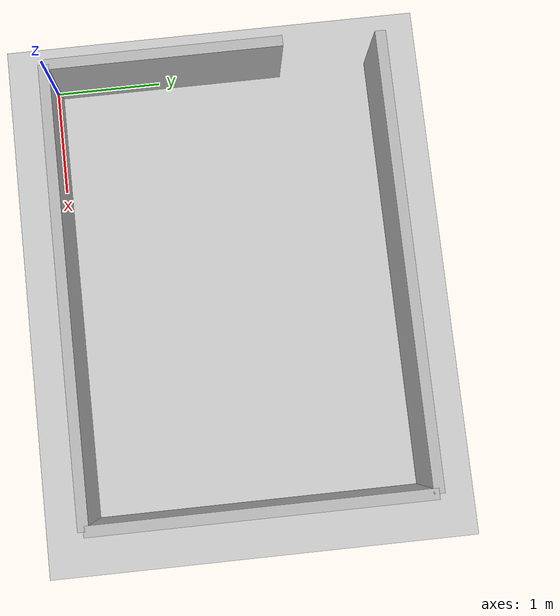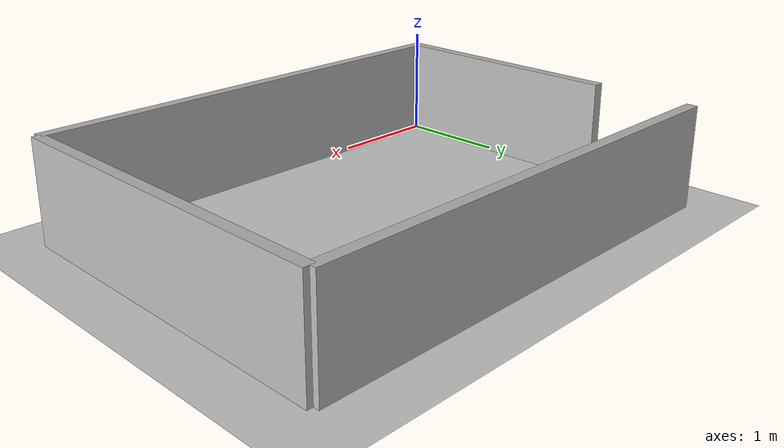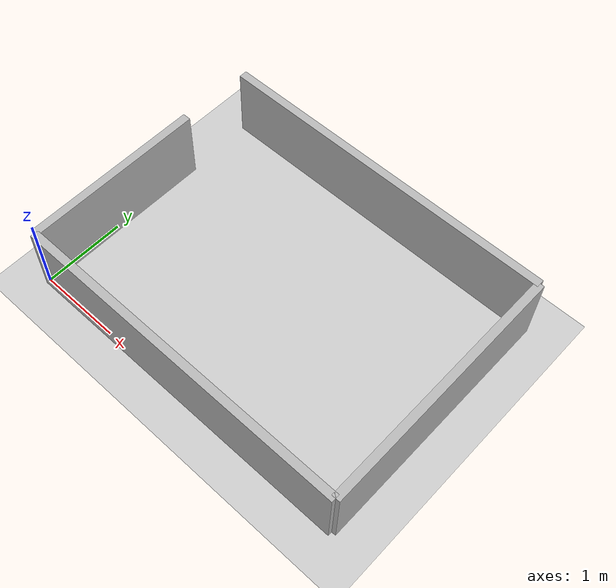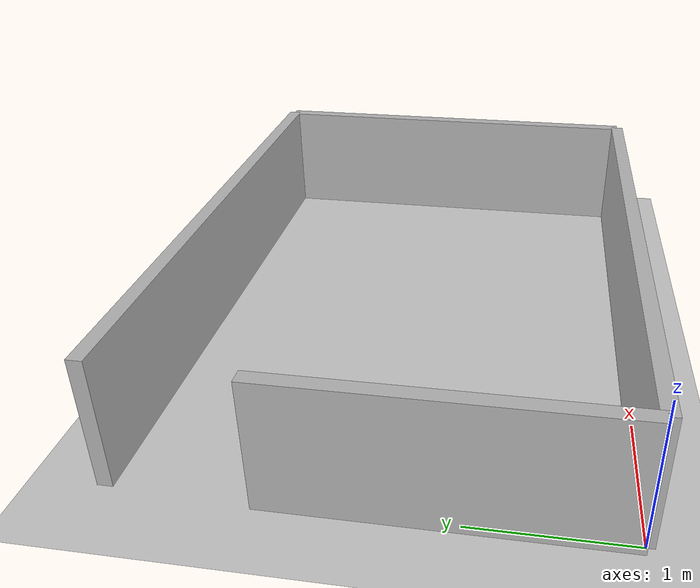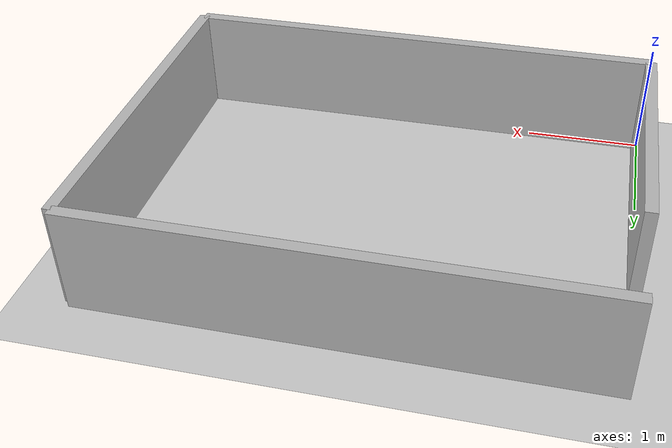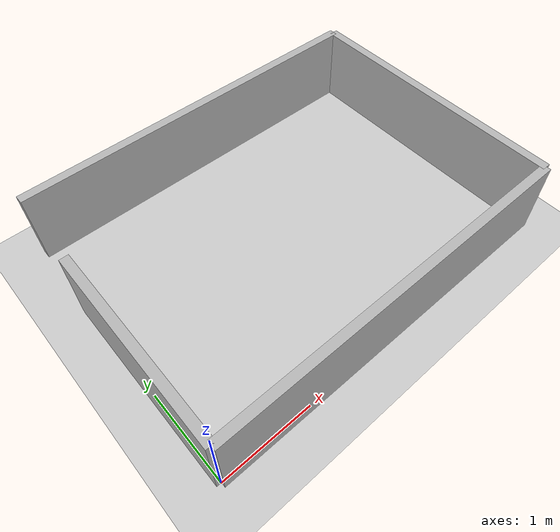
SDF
<sdf version="1.6">
 <world name="my_precise_room">
  <include><uri>model://sun</uri></include>
  <include><uri>model://ground_plane</uri></include>
  <model name="south_wall">
   <static>true</static>
   <pose>2.1 0 0 0 0 0</pose>
   <link name="wall">
    <collision name="c">
     <pose>0 0 0.45 0 0 0</pose>
     <geometry><box><size>4.2 0.1 0.9</size></box></geometry>
    </collision>
    <visual name="v"><pose>0 0 0.45 0 0 0</pose><geometry><box><size>4.2 0.1 0.9</size></box></geometry></visual>
   </link>
  </model>
  <model name="north_wall">
   <static>true</static>
   <pose>2.1 3.1 0 0 0 0</pose>
   <link name="wall">
    <collision name="c">
     <pose>0 0 0.45 0 0 0</pose>
     <geometry><box><size>4.2 0.1 0.9</size></box></geometry>
    </collision>
    <visual name="v"><pose>0 0 0.45 0 0 0</pose><geometry><box><size>4.2 0.1 0.9</size></box></geometry></visual>
   </link>
  </model>
  <model name="west_wall">
   <static>true</static>
   <pose>0 1.1 0 0 0 1.57079</pose>
   <link name="wall">
    <collision name="c">
     <pose>0 0 0.45 0 0 0</pose>
     <geometry><box><size>2.2 0.1 0.9</size></box></geometry>
    </collision>
    <visual name="v"><pose>0 0 0.45 0 0 0</pose><geometry><box><size>2.2 0.1 0.9</size></box></geometry></visual>
   </link>
  </model>
  <model name="east_wall">
   <static>true</static>
   <pose>4.2 1.55 0 0 0 1.57079</pose>
   <link name="wall">
    <collision name="c">
     <pose>0 0 0.45 0 0 0</pose>
     <geometry><box><size>3.1 0.1 0.9</size></box></geometry>
    </collision>
    <visual name="v"><pose>0 0 0.45 0 0 0</pose><geometry><box><size>3.1 0.1 0.9</size></box></geometry></visual>
   </link>
  </model>
 </world>
</sdf>
